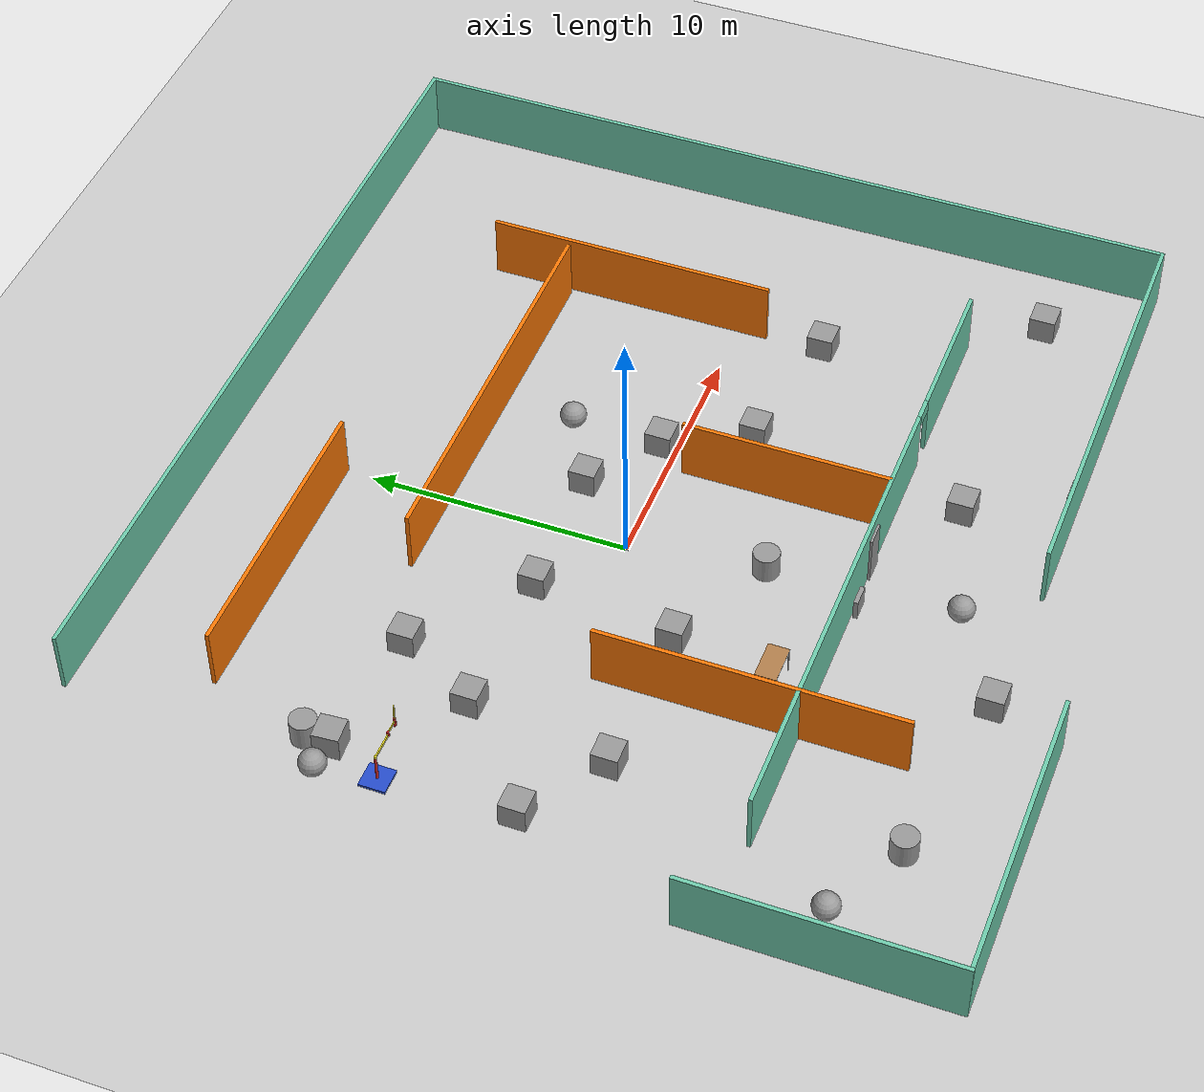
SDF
<sdf version="1.7">
 <world name="default">
  <light name="sun" type="directional">
   <pose>0 0 10 0 -0 0</pose>
   <diffuse>0.8 0.8 0.8 1</diffuse>
   <specular>0.2 0.2 0.2 1</specular>
   <attenuation>
    <range>1000</range>
    <constant>0.9</constant>
    <linear>0.01</linear>
    <quadratic>0.001</quadratic>
   </attenuation>
   <direction>-0.5 0.1 -0.9</direction>
   <spot><inner_angle>0</inner_angle><outer_angle>0</outer_angle><falloff>0</falloff></spot>
  </light>
  <model name="ground_plane">
   <static>1</static>
   <link name="link">
    <collision name="collision">
     <geometry><plane><normal>0 0 1</normal><size>100 100</size></plane></geometry>
     <surface><friction><ode><mu>100</mu><mu2>50</mu2></ode></friction></surface>
    </collision>
    <visual name="visual">
     <cast_shadows>0</cast_shadows>
     <geometry><plane><normal>0 0 1</normal><size>100 100</size></plane></geometry>
     <material>
      <script><uri>file://media/materials/scripts/gazebo.material</uri><name>Gazebo/Grey</name></script>
     </material>
    </visual>
   </link>
  </model>
  <gravity>0 0 -9.8</gravity>
  <magnetic_field>6e-06 2.3e-05 -4.2e-05</magnetic_field>
  <atmosphere type="adiabatic"/>
  <physics type="ode">
   <max_step_size>0.001</max_step_size>
   <real_time_factor>1</real_time_factor>
   <real_time_update_rate>1000</real_time_update_rate>
  </physics>
  <scene><ambient>0.4 0.4 0.4 1</ambient><background>0.7 0.7 0.7 1</background><shadows>1</shadows></scene>
  <audio><device>default</device></audio>
  <spherical_coordinates>
   <surface_model>EARTH_WGS84</surface_model>
   <latitude_deg>32.2155</latitude_deg>
   <longitude_deg>119.501</longitude_deg>
   <elevation>488</elevation>
   <heading_deg>180</heading_deg>
  </spherical_coordinates>
  <model name="Untitled222">
   <pose>2.41059 -0.5834 0 0 -0 0</pose>
   <link name="Door_1">
    <collision name="Door_1_Collision">
     <geometry><box><size>0.9 0.17 2</size></box></geometry>
     <pose>0 0 1 0 -0 0</pose>
    </collision>
    <visual name="Door_1_Visual">
     <pose>0 0 1 0 -0 0</pose>
     <geometry><box><size>0.9 0.17 2</size></box></geometry>
     <material>
      <script><uri>file://media/materials/scripts/gazebo.material</uri><name>Gazebo/Grey</name></script>
     </material>
    </visual>
    <pose>4.24902 -14.0344 0 0 -0 0</pose>
   </link>
   <link name="Door_3">
    <collision name="Door_3_Collision">
     <geometry><box><size>0.9 0.17 2</size></box></geometry>
     <pose>0 0 1 0 -0 0</pose>
    </collision>
    <visual name="Door_3_Visual">
     <pose>0 0 1 0 -0 0</pose>
     <geometry><box><size>0.9 0.17 2</size></box></geometry>
     <material>
      <script><uri>file://media/materials/scripts/gazebo.material</uri><name>Gazebo/Grey</name></script>
     </material>
    </visual>
    <pose>-0.30773 -8.01293 0 0 -0 0</pose>
   </link>
   <link name="Wall_21">
    <collision name="Wall_21_Collision">
     <geometry><box><size>32.5 0.15 2.5</size></box></geometry>
     <pose>0 0 1.25 0 -0 0</pose>
    </collision>
    <visual name="Wall_21_Visual">
     <pose>0 0 1.25 0 -0 0</pose>
     <geometry><box><size>32.5 0.15 2.5</size></box></geometry>
     <material>
      <script><uri>file://media/materials/scripts/gazebo.material</uri><name>Gazebo/Grey</name></script>
      <ambient>0.435294 0.796078 0.67451 1</ambient>
     </material>
     <meta><layer>0</layer></meta>
    </visual>
    <pose>0.976447 16.4796 0 0 -0 0</pose>
   </link>
   <link name="Wall_22">
    <collision name="Wall_22_Collision">
     <geometry><box><size>30.75 0.15 2.5</size></box></geometry>
     <pose>0 0 1.25 0 -0 0</pose>
    </collision>
    <visual name="Wall_22_Visual">
     <pose>0 0 1.25 0 -0 0</pose>
     <geometry><box><size>30.75 0.15 2.5</size></box></geometry>
     <material>
      <script><uri>file://media/materials/scripts/gazebo.material</uri><name>Gazebo/Grey</name></script>
      <ambient>0.435294 0.796078 0.67451 1</ambient>
     </material>
     <meta><layer>0</layer></meta>
    </visual>
    <pose>17.1514 1.17963 0 0 -0 -1.5708</pose>
   </link>
   <link name="Wall_23">
    <collision name="Wall_23_Collision">
     <geometry><box><size>16.75 0.15 2.5</size></box></geometry>
     <pose>0 0 1.25 0 -0 0</pose>
    </collision>
    <visual name="Wall_23_Visual">
     <pose>0 0 1.25 0 -0 0</pose>
     <geometry><box><size>16.75 0.15 2.5</size></box></geometry>
     <material>
      <script><uri>file://media/materials/scripts/gazebo.material</uri><name>Gazebo/Grey</name></script>
      <ambient>0.435294 0.796078 0.67451 1</ambient>
     </material>
     <meta><layer>0</layer></meta>
    </visual>
    <pose>8.85145 -14.1204 0 0 -0 3.14159</pose>
   </link>
   <link name="Wall_25">
    <pose>-0.652029 -7.93156 0 0 -0 0</pose>
    <visual name="Wall_25_Visual_0">
     <pose>-3.37645 0 1.25 0 -0 0</pose>
     <geometry><box><size>18.7471 0.15 2.5</size></box></geometry>
     <material>
      <script><uri>file://media/materials/scripts/gazebo.material</uri><name>Gazebo/Grey</name></script>
      <ambient>0.435294 0.796078 0.67451 1</ambient>
     </material>
     <meta><layer>0</layer></meta>
    </visual>
    <collision name="Wall_25_Collision_0">
     <geometry><box><size>18.7471 0.15 2.5</size></box></geometry>
     <pose>-3.37645 0 1.25 0 -0 0</pose>
    </collision>
    <visual name="Wall_25_Visual_1">
     <pose>9.82355 0 1.25 0 -0 0</pose>
     <geometry><box><size>5.8529 0.15 2.5</size></box></geometry>
     <material>
      <script><uri>file://media/materials/scripts/gazebo.material</uri><name>Gazebo/Grey</name></script>
      <ambient>0.435294 0.796078 0.67451 1</ambient>
     </material>
     <meta><layer>0</layer></meta>
    </visual>
    <collision name="Wall_25_Collision_1">
     <geometry><box><size>5.8529 0.15 2.5</size></box></geometry>
     <pose>9.82355 0 1.25 0 -0 0</pose>
    </collision>
    <visual name="Wall_25_Visual_2">
     <pose>6.4471 0 2.25 0 -0 0</pose>
     <geometry><box><size>0.9 0.15 0.5</size></box></geometry>
     <material>
      <script><uri>file://media/materials/scripts/gazebo.material</uri><name>Gazebo/Grey</name></script>
      <ambient>0.435294 0.796078 0.67451 1</ambient>
     </material>
     <meta><layer>0</layer></meta>
    </visual>
    <collision name="Wall_25_Collision_2">
     <geometry><box><size>0.9 0.15 0.5</size></box></geometry>
     <pose>6.4471 0 2.25 0 -0 0</pose>
    </collision>
   </link>
   <link name="Wall_27">
    <collision name="Wall_27_Collision">
     <geometry><box><size>8 0.15 2.5</size></box></geometry>
     <pose>0 0 1.25 0 -0 0</pose>
    </collision>
    <visual name="Wall_27_Visual">
     <pose>0 0 1.25 0 -0 0</pose>
     <geometry><box><size>8 0.15 2.5</size></box></geometry>
     <material>
      <script><uri>file://media/materials/scripts/gazebo.material</uri><name>Gazebo/Grey</name></script>
      <ambient>0.996078 0.47451 0.0196078 1</ambient>
     </material>
     <meta><layer>0</layer></meta>
    </visual>
    <pose>1.97065 -3.96361 0 0 -0 -1.5708</pose>
   </link>
   <link name="Wall_29">
    <collision name="Wall_29_Collision">
     <geometry><box><size>11.5 0.15 2.5</size></box></geometry>
     <pose>0 0 1.25 0 -0 0</pose>
    </collision>
    <visual name="Wall_29_Visual">
     <pose>0 0 1.25 0 -0 0</pose>
     <geometry><box><size>11.5 0.15 2.5</size></box></geometry>
     <material>
      <script><uri>file://media/materials/scripts/gazebo.material</uri><name>Gazebo/Grey</name></script>
      <ambient>0.996078 0.47451 0.0196078 1</ambient>
     </material>
     <meta><layer>0</layer></meta>
    </visual>
    <pose>-8.44479 -6.20183 0 0 -0 -1.5708</pose>
   </link>
   <link name="Wall_31">
    <collision name="Wall_31_Collision">
     <geometry><box><size>10 0.15 2.5</size></box></geometry>
     <pose>0 0 1.25 0 -0 0</pose>
    </collision>
    <visual name="Wall_31_Visual">
     <pose>0 0 1.25 0 -0 0</pose>
     <geometry><box><size>10 0.15 2.5</size></box></geometry>
     <material>
      <script><uri>file://media/materials/scripts/gazebo.material</uri><name>Gazebo/Grey</name></script>
      <ambient>0.435294 0.796078 0.67451 1</ambient>
     </material>
     <meta><layer>0</layer></meta>
    </visual>
    <pose>-17.1514 -11.5546 0 0 -0 -1.5708</pose>
   </link>
   <link name="Wall_32">
    <collision name="Wall_32_Collision">
     <geometry><box><size>11.5 0.15 2.5</size></box></geometry>
     <pose>0 0 1.25 0 -0 0</pose>
    </collision>
    <visual name="Wall_32_Visual">
     <pose>0 0 1.25 0 -0 0</pose>
     <geometry><box><size>11.5 0.15 2.5</size></box></geometry>
     <material>
      <script><uri>file://media/materials/scripts/gazebo.material</uri><name>Gazebo/Grey</name></script>
      <ambient>0.435294 0.796078 0.67451 1</ambient>
     </material>
     <meta><layer>0</layer></meta>
    </visual>
    <pose>-11.4764 -16.4796 0 0 -0 0</pose>
   </link>
   <link name="Wall_34">
    <collision name="Wall_34_Collision">
     <geometry><box><size>11 0.15 2.5</size></box></geometry>
     <pose>0 0 1.25 0 -0 0</pose>
    </collision>
    <visual name="Wall_34_Visual">
     <pose>0 0 1.25 0 -0 0</pose>
     <geometry><box><size>11 0.15 2.5</size></box></geometry>
     <material>
      <script><uri>file://media/materials/scripts/gazebo.material</uri><name>Gazebo/Grey</name></script>
      <ambient>0.996078 0.47451 0.0196078 1</ambient>
     </material>
     <meta><layer>0</layer></meta>
    </visual>
    <pose>-7.82066 11.6788 0 0 -0 0</pose>
   </link>
   <link name="Wall_36">
    <collision name="Wall_36_Collision">
     <geometry><box><size>15.5 0.15 2.5</size></box></geometry>
     <pose>0 0 1.25 0 -0 0</pose>
    </collision>
    <visual name="Wall_36_Visual">
     <pose>0 0 1.25 0 -0 0</pose>
     <geometry><box><size>15.5 0.15 2.5</size></box></geometry>
     <material>
      <script><uri>file://media/materials/scripts/gazebo.material</uri><name>Gazebo/Grey</name></script>
      <ambient>0.996078 0.47451 0.0196078 1</ambient>
     </material>
     <meta><layer>0</layer></meta>
    </visual>
    <pose>1.83407 7.52886 0 0 -0 0</pose>
   </link>
   <link name="Wall_38">
    <collision name="Wall_38_Collision">
     <geometry><box><size>11.25 0.15 2.5</size></box></geometry>
     <pose>0 0 1.25 0 -0 0</pose>
    </collision>
    <visual name="Wall_38_Visual">
     <pose>0 0 1.25 0 -0 0</pose>
     <geometry><box><size>11.25 0.15 2.5</size></box></geometry>
     <material>
      <script><uri>file://media/materials/scripts/gazebo.material</uri><name>Gazebo/Grey</name></script>
      <ambient>0.996078 0.47451 0.0196078 1</ambient>
     </material>
     <meta><layer>0</layer></meta>
    </visual>
    <pose>9.8636 5.07094 0 0 -0 -1.5708</pose>
   </link>
   <link name="Window_2">
    <collision name="Window_2_Collision">
     <geometry><box><size>0.8 0.17 0.8</size></box></geometry>
     <pose>0 0 0.4 0 -0 0</pose>
    </collision>
    <visual name="Window_2_Visual">
     <pose>0 0 0.4 0 -0 0</pose>
     <geometry><box><size>0.8 0.17 0.8</size></box></geometry>
     <material>
      <script><uri>file://media/materials/scripts/gazebo.material</uri><name>Gazebo/Grey</name></script>
     </material>
    </visual>
    <pose>-2.66748 -8.25704 0.5 0 -0 0</pose>
   </link>
   <static>1</static>
  </model>
  <model name="unit_cylinder">
   <pose>-11.9768 7.13366 0.499992 -3e-06 2e-06 0.013015</pose>
   <link name="link">
    <inertial>
     <mass>1</mass>
     <inertia><ixx>0.145833</ixx><ixy>0</ixy><ixz>0</ixz><iyy>0.145833</iyy><iyz>0</iyz><izz>0.125</izz></inertia>
    </inertial>
    <collision name="collision">
     <geometry><cylinder><radius>0.5</radius><length>1</length></cylinder></geometry>
    </collision>
    <visual name="visual">
     <geometry><cylinder><radius>0.5</radius><length>1</length></cylinder></geometry>
     <material>
      <script><name>Gazebo/Grey</name><uri>file://media/materials/scripts/gazebo.material</uri></script>
     </material>
    </visual>
   </link>
  </model>
  <model name="unit_sphere">
   <pose>-13.2033 6.23711 0.5 0 -0 0</pose>
   <link name="link">
    <inertial>
     <mass>1</mass>
     <inertia><ixx>0.1</ixx><ixy>0</ixy><ixz>0</ixz><iyy>0.1</iyy><iyz>0</iyz><izz>0.1</izz></inertia>
    </inertial>
    <collision name="collision"><geometry><sphere><radius>0.5</radius></sphere></geometry></collision>
    <visual name="visual">
     <geometry><sphere><radius>0.5</radius></sphere></geometry>
     <material>
      <script><name>Gazebo/Grey</name><uri>file://media/materials/scripts/gazebo.material</uri></script>
     </material>
    </visual>
   </link>
  </model>
  <model name="unit_box">
   <pose>-11.9904 6.12986 0.499999 3e-06 -0 0.073833</pose>
   <link name="link">
    <inertial>
     <mass>1</mass>
     <inertia>
      <ixx>0.166667</ixx>
      <ixy>0</ixy>
      <ixz>0</ixz>
      <iyy>0.166667</iyy>
      <iyz>0</iyz>
      <izz>0.166667</izz>
     </inertia>
    </inertial>
    <collision name="collision"><geometry><box><size>1 1 1</size></box></geometry></collision>
    <visual name="visual">
     <geometry><box><size>1 1 1</size></box></geometry>
     <material>
      <script><name>Gazebo/Grey</name><uri>file://media/materials/scripts/gazebo.material</uri></script>
     </material>
    </visual>
   </link>
  </model>
  <model name="simple_arm">
   <link name="arm_base">
    <inertial>
     <pose>0 0 0.00099 0 -0 0</pose>
     <inertia><ixx>1.11</ixx><ixy>0</ixy><ixz>0</ixz><iyy>100.11</iyy><iyz>0</iyz><izz>1.01</izz></inertia>
     <mass>101</mass>
    </inertial>
    <collision name="arm_base_geom">
     <pose>0 0 0.05 0 -0 0</pose>
     <geometry><box><size>1 1 0.1</size></box></geometry>
    </collision>
    <visual name="arm_base_geom_visual">
     <pose>0 0 0.05 0 -0 0</pose>
     <geometry><box><size>1 1 0.1</size></box></geometry>
     <material>
      <script><uri>file://media/materials/scripts/gazebo.material</uri><name>Gazebo/Blue</name></script>
     </material>
    </visual>
    <collision name="arm_base_geom_arm_trunk">
     <pose>0 0 0.6 0 -0 0</pose>
     <geometry><cylinder><radius>0.05</radius><length>1</length></cylinder></geometry>
    </collision>
    <visual name="arm_base_geom_arm_trunk_visual">
     <pose>0 0 0.6 0 -0 0</pose>
     <geometry><cylinder><radius>0.05</radius><length>1</length></cylinder></geometry>
     <material>
      <script><uri>file://media/materials/scripts/gazebo.material</uri><name>Gazebo/Red</name></script>
     </material>
    </visual>
   </link>
   <link name="arm_shoulder_pan">
    <pose>0 0 1.1 0 -0 0</pose>
    <inertial>
     <pose>0.045455 0 0 0 -0 0</pose>
     <inertia><ixx>0.011</ixx><ixy>0</ixy><ixz>0</ixz><iyy>0.0225</iyy><iyz>0</iyz><izz>0.0135</izz></inertia>
     <mass>1.1</mass>
    </inertial>
    <collision name="arm_shoulder_pan_geom">
     <pose>0 0 0.05 0 -0 0</pose>
     <geometry><cylinder><radius>0.05</radius><length>0.1</length></cylinder></geometry>
    </collision>
    <visual name="arm_shoulder_pan_geom_visual">
     <pose>0 0 0.05 0 -0 0</pose>
     <geometry><cylinder><radius>0.05</radius><length>0.1</length></cylinder></geometry>
     <material>
      <script><uri>file://media/materials/scripts/gazebo.material</uri><name>Gazebo/Yellow</name></script>
     </material>
    </visual>
    <collision name="arm_shoulder_pan_geom_arm_shoulder">
     <pose>0.55 0 0.05 0 -0 0</pose>
     <geometry><box><size>1 0.05 0.1</size></box></geometry>
    </collision>
    <visual name="arm_shoulder_pan_geom_arm_shoulder_visual">
     <pose>0.55 0 0.05 0 -0 0</pose>
     <geometry><box><size>1 0.05 0.1</size></box></geometry>
     <material>
      <script><uri>file://media/materials/scripts/gazebo.material</uri><name>Gazebo/Yellow</name></script>
     </material>
    </visual>
   </link>
   <link name="arm_elbow_pan">
    <pose>1.05 0 1.1 0 -0 0</pose>
    <inertial>
     <pose>0.0875 0 0.083333 0 -0 0</pose>
     <inertia>
      <ixx>0.031</ixx>
      <ixy>0</ixy>
      <ixz>0.005</ixz>
      <iyy>0.07275</iyy>
      <iyz>0</iyz>
      <izz>0.04475</izz>
     </inertia>
     <mass>1.2</mass>
    </inertial>
    <collision name="arm_elbow_pan_geom">
     <pose>0 0 0.1 0 -0 0</pose>
     <geometry><cylinder><radius>0.05</radius><length>0.2</length></cylinder></geometry>
    </collision>
    <visual name="arm_elbow_pan_geom_visual">
     <pose>0 0 0.1 0 -0 0</pose>
     <geometry><cylinder><radius>0.05</radius><length>0.2</length></cylinder></geometry>
     <material>
      <script><uri>file://media/materials/scripts/gazebo.material</uri><name>Gazebo/Red</name></script>
     </material>
    </visual>
    <collision name="arm_elbow_pan_geom_arm_elbow">
     <pose>0.3 0 0.15 0 -0 0</pose>
     <geometry><box><size>0.5 0.03 0.1</size></box></geometry>
    </collision>
    <visual name="arm_elbow_pan_geom_arm_elbow_visual">
     <pose>0.3 0 0.15 0 -0 0</pose>
     <geometry><box><size>0.5 0.03 0.1</size></box></geometry>
     <material>
      <script><uri>file://media/materials/scripts/gazebo.material</uri><name>Gazebo/Yellow</name></script>
     </material>
    </visual>
    <collision name="arm_elbow_pan_geom_arm_wrist">
     <pose>0.55 0 0.15 0 -0 0</pose>
     <geometry><cylinder><radius>0.05</radius><length>0.3</length></cylinder></geometry>
    </collision>
    <visual name="arm_elbow_pan_geom_arm_wrist_visual">
     <pose>0.55 0 0.15 0 -0 0</pose>
     <geometry><cylinder><radius>0.05</radius><length>0.3</length></cylinder></geometry>
     <material>
      <script><uri>file://media/materials/scripts/gazebo.material</uri><name>Gazebo/Red</name></script>
     </material>
    </visual>
   </link>
   <link name="arm_wrist_lift">
    <pose>1.6 0 1.05 0 -0 0</pose>
    <inertial>
     <inertia><ixx>0.01</ixx><ixy>0</ixy><ixz>0</ixz><iyy>0.01</iyy><iyz>0</iyz><izz>0.001</izz></inertia>
     <mass>0.1</mass>
    </inertial>
    <collision name="arm_wrist_lift_geom">
     <pose>0 0 0.5 0 -0 0</pose>
     <geometry><cylinder><radius>0.03</radius><length>1</length></cylinder></geometry>
    </collision>
    <visual name="arm_wrist_lift_geom_visual">
     <pose>0 0 0.5 0 -0 0</pose>
     <geometry><cylinder><radius>0.03</radius><length>1</length></cylinder></geometry>
     <material>
      <script><uri>file://media/materials/scripts/gazebo.material</uri><name>Gazebo/Yellow</name></script>
     </material>
    </visual>
   </link>
   <link name="arm_wrist_roll">
    <pose>1.6 0 1 0 -0 0</pose>
    <inertial>
     <inertia><ixx>0.01</ixx><ixy>0</ixy><ixz>0</ixz><iyy>0.01</iyy><iyz>0</iyz><izz>0.001</izz></inertia>
     <mass>0.1</mass>
    </inertial>
    <collision name="arm_wrist_roll_geom">
     <pose>0 0 0.025 0 -0 0</pose>
     <geometry><cylinder><radius>0.05</radius><length>0.05</length></cylinder></geometry>
    </collision>
    <visual name="arm_wrist_roll_geom_visual">
     <pose>0 0 0.025 0 -0 0</pose>
     <geometry><cylinder><radius>0.05</radius><length>0.05</length></cylinder></geometry>
     <material>
      <script><uri>file://media/materials/scripts/gazebo.material</uri><name>Gazebo/Red</name></script>
     </material>
    </visual>
   </link>
   <joint name="arm_shoulder_pan_joint" type="revolute">
    <parent>arm_base</parent>
    <child>arm_shoulder_pan</child>
    <axis>
     <dynamics>
      <damping>1</damping>
      <friction>0</friction>
      <spring_reference>0</spring_reference>
      <spring_stiffness>0</spring_stiffness>
     </dynamics>
     <xyz expressed_in="__model__">0 0 1</xyz>
     <limit><lower>-1e+16</lower><upper>1e+16</upper></limit>
    </axis>
   </joint>
   <joint name="arm_elbow_pan_joint" type="revolute">
    <parent>arm_shoulder_pan</parent>
    <child>arm_elbow_pan</child>
    <axis>
     <dynamics>
      <damping>1</damping>
      <friction>0</friction>
      <spring_reference>0</spring_reference>
      <spring_stiffness>0</spring_stiffness>
     </dynamics>
     <xyz expressed_in="__model__">0 0 1</xyz>
     <limit><lower>-1e+16</lower><upper>1e+16</upper></limit>
    </axis>
   </joint>
   <joint name="arm_wrist_lift_joint" type="prismatic">
    <parent>arm_elbow_pan</parent>
    <child>arm_wrist_lift</child>
    <axis>
     <dynamics>
      <damping>1</damping>
      <friction>0</friction>
      <spring_reference>0</spring_reference>
      <spring_stiffness>0</spring_stiffness>
     </dynamics>
     <limit><lower>-0.8</lower><upper>0.1</upper></limit>
     <xyz expressed_in="__model__">0 0 1</xyz>
    </axis>
   </joint>
   <joint name="arm_wrist_roll_joint" type="revolute">
    <parent>arm_wrist_lift</parent>
    <child>arm_wrist_roll</child>
    <axis>
     <dynamics>
      <damping>1</damping>
      <friction>0</friction>
      <spring_reference>0</spring_reference>
      <spring_stiffness>0</spring_stiffness>
     </dynamics>
     <limit><lower>-2.99999</lower><upper>2.99999</upper></limit>
     <xyz expressed_in="__model__">0 0 1</xyz>
    </axis>
   </joint>
   <pose>-12.7416 4.07911 -0 0 0 -0.004441</pose>
  </model>
  <model name="table">
   <static>1</static>
   <link name="link">
    <collision name="surface">
     <pose>0 0 1 0 -0 0</pose>
     <geometry><box><size>1.5 0.8 0.03</size></box></geometry>
     <surface><friction><ode><mu>0.6</mu><mu2>0.6</mu2></ode></friction></surface>
    </collision>
    <visual name="visual1">
     <pose>0 0 1 0 -0 0</pose>
     <geometry><box><size>1.5 0.8 0.03</size></box></geometry>
     <material>
      <script><uri>file://media/materials/scripts/gazebo.material</uri><name>Gazebo/Wood</name></script>
     </material>
    </visual>
    <collision name="front_left_leg">
     <pose>0.68 0.38 0.5 0 -0 0</pose>
     <geometry><cylinder><radius>0.02</radius><length>1</length></cylinder></geometry>
    </collision>
    <visual name="front_left_leg1">
     <pose>0.68 0.38 0.5 0 -0 0</pose>
     <geometry><cylinder><radius>0.02</radius><length>1</length></cylinder></geometry>
     <material>
      <script><uri>file://media/materials/scripts/gazebo.material</uri><name>Gazebo/Grey</name></script>
     </material>
    </visual>
    <collision name="front_right_leg">
     <pose>0.68 -0.38 0.5 0 -0 0</pose>
     <geometry><cylinder><radius>0.02</radius><length>1</length></cylinder></geometry>
    </collision>
    <visual name="front_right_leg1">
     <pose>0.68 -0.38 0.5 0 -0 0</pose>
     <geometry><cylinder><radius>0.02</radius><length>1</length></cylinder></geometry>
     <material>
      <script><uri>file://media/materials/scripts/gazebo.material</uri><name>Gazebo/Grey</name></script>
     </material>
    </visual>
    <collision name="back_right_leg">
     <pose>-0.68 -0.38 0.5 0 -0 0</pose>
     <geometry><cylinder><radius>0.02</radius><length>1</length></cylinder></geometry>
    </collision>
    <visual name="back_right_leg1">
     <pose>-0.68 -0.38 0.5 0 -0 0</pose>
     <geometry><cylinder><radius>0.02</radius><length>1</length></cylinder></geometry>
     <material>
      <script><uri>file://media/materials/scripts/gazebo.material</uri><name>Gazebo/Grey</name></script>
     </material>
    </visual>
    <collision name="back_left_leg">
     <pose>-0.68 0.38 0.5 0 -0 0</pose>
     <geometry><cylinder><radius>0.02</radius><length>1</length></cylinder></geometry>
    </collision>
    <visual name="back_left_leg1">
     <pose>-0.68 0.38 0.5 0 -0 0</pose>
     <geometry><cylinder><radius>0.02</radius><length>1</length></cylinder></geometry>
     <material>
      <script><uri>file://media/materials/scripts/gazebo.material</uri><name>Gazebo/Grey</name></script>
     </material>
    </visual>
   </link>
   <pose>-4.00101 -6.91637 0 0 -0 0</pose>
  </model>
  <model name="fishbot">
   <link name="base_footprint">
    <inertial>
     <pose>0.002308 0 0.404577 0 -0 0</pose>
     <mass>0.52</mass>
     <inertia>
      <ixx>0.014299</ixx>
      <ixy>0</ixy>
      <ixz>0.000102692</ixz>
      <iyy>0.0163682</iyy>
      <iyz>0</iyz>
      <izz>0.0238692</izz>
     </inertia>
    </inertial>
    <collision name="base_footprint_fixed_joint_lump__base_link_collision">
     <pose>0 0 0.36 0 -0 0</pose>
     <geometry><cylinder><length>0.12</length><radius>0.1</radius></cylinder></geometry>
    </collision>
    <collision name="base_footprint_fixed_joint_lump__caster_link_collision_1">
     <pose>0.06 0 0.319 1.57079 -0 0</pose>
     <geometry><sphere><radius>0.032</radius></sphere></geometry>
     <surface>
      <contact><ode><kp>1e+06</kp><kd>10</kd></ode></contact>
      <friction><ode><mu>0</mu><mu2>0</mu2></ode></friction>
     </surface>
    </collision>
    <collision name="base_footprint_fixed_joint_lump__gps_link_collision_2">
     <pose>-0.1 0 0.46 0 -0 0</pose>
     <geometry><box><size>0.02 0.02 0.02</size></box></geometry>
    </collision>
    <collision name="base_footprint_fixed_joint_lump__imu_link_collision_3">
     <pose>0 0 0.38 0 -0 0</pose>
     <geometry><box><size>0.02 0.02 0.02</size></box></geometry>
    </collision>
    <collision name="base_footprint_fixed_joint_lump__velodyne_collision_4">
     <pose>0 0 0.38 0 -0 0</pose>
     <geometry><cylinder><length>0.02</length><radius>0.02</radius></cylinder></geometry>
    </collision>
    <collision name="base_footprint_fixed_joint_lump__navsat_link_collision_5">
     <pose>0.1 0 0.46 0 -0 0</pose>
     <geometry><box><size>0.02 0.02 0.02</size></box></geometry>
    </collision>
    <visual name="base_footprint_fixed_joint_lump__base_link_visual">
     <pose>0 0 0.36 0 -0 0</pose>
     <geometry><cylinder><length>0.04</length><radius>0.1</radius></cylinder></geometry>
    </visual>
    <visual name="base_footprint_fixed_joint_lump__caster_link_visual_1">
     <pose>0.06 0 0.319 1.57079 -0 0</pose>
     <geometry><sphere><radius>0.032</radius></sphere></geometry>
     <material>
      <script><name>Gazebo/Black</name><uri>file://media/materials/scripts/gazebo.material</uri></script>
     </material>
    </visual>
    <visual name="base_footprint_fixed_joint_lump__gps_link_visual_2">
     <pose>-0.1 0 0.46 0 -0 0</pose>
     <geometry><box><size>0.02 0.02 0.02</size></box></geometry>
    </visual>
    <visual name="base_footprint_fixed_joint_lump__imu_link_visual_3">
     <pose>0 0 0.38 0 -0 0</pose>
     <geometry><box><size>0.02 0.02 0.02</size></box></geometry>
    </visual>
    <visual name="base_footprint_fixed_joint_lump__velodyne_visual_4">
     <pose>0 0 0.38 0 -0 0</pose>
     <geometry><cylinder><length>0.02</length><radius>0.02</radius></cylinder></geometry>
    </visual>
    <visual name="base_footprint_fixed_joint_lump__navsat_link_visual_5">
     <pose>0.1 0 0.46 0 -0 0</pose>
     <geometry><box><size>0.02 0.02 0.02</size></box></geometry>
    </visual>
    <sensor name="my_gpss" type="gps">
     <always_on>1</always_on>
     <update_rate>10</update_rate>
     <plugin name="my_gps_plugins" filename="libgazebo_ros_gps_sensor.so">
      <ros><namespace>/gps2</namespace><remapping>~/out:=/gps/fix2</remapping></ros>
     </plugin>
     <pose>-0.1 0 0.46 0 -0 0</pose>
    </sensor>
    <sensor name="imu_sensor" type="imu">
     <plugin name="imu_plugin" filename="libgazebo_ros_imu_sensor.so">
      <ros><namespace>/</namespace><remapping>~/out:=/imu</remapping></ros>
      <initial_orientation_as_reference>0</initial_orientation_as_reference>
     </plugin>
     <always_on>1</always_on>
     <update_rate>500</update_rate>
     <visualize>1</visualize>
     <imu>
      <angular_velocity>
       <x>
        <noise type="gaussian">
         <mean>0</mean>
         <stddev>0.0002</stddev>
         <bias_mean>7.5e-06</bias_mean>
         <bias_stddev>8e-07</bias_stddev>
        </noise>
       </x>
       <y>
        <noise type="gaussian">
         <mean>0</mean>
         <stddev>0.0002</stddev>
         <bias_mean>7.5e-06</bias_mean>
         <bias_stddev>8e-07</bias_stddev>
        </noise>
       </y>
       <z>
        <noise type="gaussian">
         <mean>0</mean>
         <stddev>0.0002</stddev>
         <bias_mean>7.5e-06</bias_mean>
         <bias_stddev>8e-07</bias_stddev>
        </noise>
       </z>
      </angular_velocity>
      <linear_acceleration>
       <x>
        <noise type="gaussian">
         <mean>0</mean>
         <stddev>0.017</stddev>
         <bias_mean>0.1</bias_mean>
         <bias_stddev>0.001</bias_stddev>
        </noise>
       </x>
       <y>
        <noise type="gaussian">
         <mean>0</mean>
         <stddev>0.017</stddev>
         <bias_mean>0.1</bias_mean>
         <bias_stddev>0.001</bias_stddev>
        </noise>
       </y>
       <z>
        <noise type="gaussian">
         <mean>0</mean>
         <stddev>0.017</stddev>
         <bias_mean>0.1</bias_mean>
         <bias_stddev>0.001</bias_stddev>
        </noise>
       </z>
      </linear_acceleration>
     </imu>
     <pose>0 0 0.38 0 -0 0</pose>
    </sensor>
    <sensor name="laser_sensor" type="ray">
     <always_on>1</always_on>
     <visualize>0</visualize>
     <update_rate>10</update_rate>
     <ray>
      <scan>
       <horizontal>
        <samples>60</samples>
        <resolution>1</resolution>
        <min_angle>0</min_angle>
        <max_angle>6.28</max_angle>
       </horizontal>
       <vertical>
        <samples>16</samples>
        <resolution>1</resolution>
        <min_angle>0</min_angle>
        <max_angle>0.4</max_angle>
       </vertical>
      </scan>
      <range><min>0.12</min><max>40.5</max><resolution>0.015</resolution></range>
      <noise><type>gaussian</type><mean>0</mean><stddev>0.01</stddev></noise>
     </ray>
     <plugin name="my_ray_sensor_plugin" filename="libgazebo_ros_ray_sensor.so">
      <ros><namespace>/ray</namespace><remapping>~/out:=/points_raw</remapping></ros>
      <output_type>sensor_msgs/PointCloud2</output_type>
      <min_intensity>100.0</min_intensity>
      <frame_name>velodyne</frame_name>
     </plugin>
     <pose>0 0 0.38 0 -0 0</pose>
    </sensor>
    <sensor name="my_gps" type="gps">
     <always_on>1</always_on>
     <update_rate>10</update_rate>
     <plugin name="my_gps_plugin" filename="libgazebo_ros_gps_sensor.so">
      <ros><namespace>/gps1</namespace><remapping>~/out:=/gps/fix</remapping></ros>
     </plugin>
     <pose>0.1 0 0.46 0 -0 0</pose>
    </sensor>
   </link>
   <joint name="left_wheel_joint" type="revolute">
    <pose relative_to="base_footprint">-0.04 0.1 0.32 0 -0 0</pose>
    <parent>base_footprint</parent>
    <child>left_wheel_link</child>
    <axis>
     <xyz>0 1 0</xyz>
     <limit><lower>-1e+16</lower><upper>1e+16</upper></limit>
     <dynamics><spring_reference>0</spring_reference><spring_stiffness>0</spring_stiffness></dynamics>
    </axis>
   </joint>
   <link name="left_wheel_link">
    <pose relative_to="left_wheel_joint">0 0 0 0 -0 0</pose>
    <inertial>
     <mass>0.2</mass>
     <inertia>
      <ixx>0.000190417</ixx>
      <ixy>0</ixy>
      <ixz>0</ixz>
      <iyy>0.0001904</iyy>
      <iyz>0</iyz>
      <izz>0.00036</izz>
     </inertia>
    </inertial>
    <collision name="left_wheel_link_collision">
     <pose>0 0 0 1.57079 -0 0</pose>
     <geometry><cylinder><length>0.04</length><radius>0.032</radius></cylinder></geometry>
    </collision>
    <visual name="left_wheel_link_visual">
     <pose>0 0 0 1.57079 -0 0</pose>
     <geometry><cylinder><length>0.04</length><radius>0.032</radius></cylinder></geometry>
    </visual>
   </link>
   <joint name="right_wheel_joint" type="revolute">
    <pose relative_to="base_footprint">-0.04 -0.1 0.32 0 -0 0</pose>
    <parent>base_footprint</parent>
    <child>right_wheel_link</child>
    <axis>
     <xyz>0 1 0</xyz>
     <limit><lower>-1e+16</lower><upper>1e+16</upper></limit>
     <dynamics><spring_reference>0</spring_reference><spring_stiffness>0</spring_stiffness></dynamics>
    </axis>
   </joint>
   <link name="right_wheel_link">
    <pose relative_to="right_wheel_joint">0 0 0 0 -0 0</pose>
    <inertial>
     <mass>0.2</mass>
     <inertia>
      <ixx>0.000190417</ixx>
      <ixy>0</ixy>
      <ixz>0</ixz>
      <iyy>0.0001904</iyy>
      <iyz>0</iyz>
      <izz>0.00036</izz>
     </inertia>
    </inertial>
    <collision name="right_wheel_link_collision">
     <pose>0 0 0 1.57079 -0 0</pose>
     <geometry><cylinder><length>0.04</length><radius>0.032</radius></cylinder></geometry>
    </collision>
    <visual name="right_wheel_link_visual">
     <pose>0 0 0 1.57079 -0 0</pose>
     <geometry><cylinder><length>0.04</length><radius>0.032</radius></cylinder></geometry>
    </visual>
   </link>
   <static>0</static>
   <plugin name="diff_drive" filename="libgazebo_ros_diff_drive.so">
    <ros><namespace>/</namespace><remapping>cmd_vel:=cmd_vel</remapping><remapping>odom:=/odom</remapping></ros>
    <update_rate>500</update_rate>
    <left_joint>left_wheel_joint</left_joint>
    <right_joint>right_wheel_joint</right_joint>
    <wheel_separation>0.2</wheel_separation>
    <wheel_diameter>0.065</wheel_diameter>
    <max_wheel_torque>60</max_wheel_torque>
    <max_wheel_acceleration>3.0</max_wheel_acceleration>
    <publish_odom>1</publish_odom>
    <publish_odom_tf>0</publish_odom_tf>
    <publish_wheel_tf>0</publish_wheel_tf>
    <odometry_frame>odom</odometry_frame>
    <robot_base_frame>base_link</robot_base_frame>
   </plugin>
   <pose>0.01418 -0.000128 -0.287585 1e-06 -0.009978 -0.001574</pose>
  </model>
  <model name="unit_box_0">
   <pose>-2.83864 2.34832 0.499995 -1e-05 -0 -0</pose>
   <link name="link">
    <inertial>
     <mass>1</mass>
     <inertia>
      <ixx>0.166667</ixx>
      <ixy>0</ixy>
      <ixz>0</ixz>
      <iyy>0.166667</iyy>
      <iyz>0</iyz>
      <izz>0.166667</izz>
     </inertia>
    </inertial>
    <collision name="collision"><geometry><box><size>1 1 1</size></box></geometry></collision>
    <visual name="visual">
     <geometry><box><size>1 1 1</size></box></geometry>
     <material>
      <script><name>Gazebo/Grey</name><uri>file://media/materials/scripts/gazebo.material</uri></script>
     </material>
    </visual>
   </link>
  </model>
  <model name="unit_sphere_0">
   <pose>5.25747 4.11448 0.5 0 -0 0</pose>
   <link name="link">
    <inertial>
     <mass>1</mass>
     <inertia><ixx>0.1</ixx><ixy>0</ixy><ixz>0</ixz><iyy>0.1</iyy><iyz>0</iyz><izz>0.1</izz></inertia>
    </inertial>
    <collision name="collision"><geometry><sphere><radius>0.5</radius></sphere></geometry></collision>
    <visual name="visual">
     <geometry><sphere><radius>0.5</radius></sphere></geometry>
     <material>
      <script><name>Gazebo/Grey</name><uri>file://media/materials/scripts/gazebo.material</uri></script>
     </material>
    </visual>
   </link>
  </model>
  <model name="unit_cylinder_0">
   <pose>0.757591 -5.07448 0.499998 3e-06 -3e-06 0</pose>
   <link name="link">
    <inertial>
     <mass>1</mass>
     <inertia><ixx>0.145833</ixx><ixy>0</ixy><ixz>0</ixz><iyy>0.145833</iyy><iyz>0</iyz><izz>0.125</izz></inertia>
    </inertial>
    <collision name="collision">
     <geometry><cylinder><radius>0.5</radius><length>1</length></cylinder></geometry>
    </collision>
    <visual name="visual">
     <geometry><cylinder><radius>0.5</radius><length>1</length></cylinder></geometry>
     <material>
      <script><name>Gazebo/Grey</name><uri>file://media/materials/scripts/gazebo.material</uri></script>
     </material>
    </visual>
   </link>
  </model>
  <model name="unit_box_1">
   <pose>-9.47241 -3.00226 0.499995 0 1e-05 0</pose>
   <link name="link">
    <inertial>
     <mass>1</mass>
     <inertia>
      <ixx>0.166667</ixx>
      <ixy>0</ixy>
      <ixz>0</ixz>
      <iyy>0.166667</iyy>
      <iyz>0</iyz>
      <izz>0.166667</izz>
     </inertia>
    </inertial>
    <collision name="collision"><geometry><box><size>1 1 1</size></box></geometry></collision>
    <visual name="visual">
     <geometry><box><size>1 1 1</size></box></geometry>
     <material>
      <script><name>Gazebo/Grey</name><uri>file://media/materials/scripts/gazebo.material</uri></script>
     </material>
    </visual>
   </link>
  </model>
  <model name="unit_box_2">
   <pose>-6.9299 5.58704 0.499995 -1e-05 -0 -0</pose>
   <link name="link">
    <inertial>
     <mass>1</mass>
     <inertia>
      <ixx>0.166667</ixx>
      <ixy>0</ixy>
      <ixz>0</ixz>
      <iyy>0.166667</iyy>
      <iyz>0</iyz>
      <izz>0.166667</izz>
     </inertia>
    </inertial>
    <collision name="collision"><geometry><box><size>1 1 1</size></box></geometry></collision>
    <visual name="visual">
     <geometry><box><size>1 1 1</size></box></geometry>
     <material>
      <script><name>Gazebo/Grey</name><uri>file://media/materials/scripts/gazebo.material</uri></script>
     </material>
    </visual>
   </link>
  </model>
  <model name="unit_box_3">
   <pose>-3.46823 -3.09981 0.499995 0 1e-05 0</pose>
   <link name="link">
    <inertial>
     <mass>1</mass>
     <inertia>
      <ixx>0.166667</ixx>
      <ixy>0</ixy>
      <ixz>0</ixz>
      <iyy>0.166667</iyy>
      <iyz>0</iyz>
      <izz>0.166667</izz>
     </inertia>
    </inertial>
    <collision name="collision"><geometry><box><size>1 1 1</size></box></geometry></collision>
    <visual name="visual">
     <geometry><box><size>1 1 1</size></box></geometry>
     <material>
      <script><name>Gazebo/Grey</name><uri>file://media/materials/scripts/gazebo.material</uri></script>
     </material>
    </visual>
   </link>
  </model>
  <model name="unit_box_4">
   <pose>6.99096 -2.51396 0.499995 -1e-05 -0 -0</pose>
   <link name="link">
    <inertial>
     <mass>1</mass>
     <inertia>
      <ixx>0.166667</ixx>
      <ixy>0</ixy>
      <ixz>0</ixz>
      <iyy>0.166667</iyy>
      <iyz>0</iyz>
      <izz>0.166667</izz>
     </inertia>
    </inertial>
    <collision name="collision"><geometry><box><size>1 1 1</size></box></geometry></collision>
    <visual name="visual">
     <geometry><box><size>1 1 1</size></box></geometry>
     <material>
      <script><name>Gazebo/Grey</name><uri>file://media/materials/scripts/gazebo.material</uri></script>
     </material>
    </visual>
   </link>
  </model>
  <model name="unit_box_5">
   <pose>16.3371 -11.0778 0.499995 0 1e-05 0</pose>
   <link name="link">
    <inertial>
     <mass>1</mass>
     <inertia>
      <ixx>0.166667</ixx>
      <ixy>0</ixy>
      <ixz>0</ixz>
      <iyy>0.166667</iyy>
      <iyz>0</iyz>
      <izz>0.166667</izz>
     </inertia>
    </inertial>
    <collision name="collision"><geometry><box><size>1 1 1</size></box></geometry></collision>
    <visual name="visual">
     <geometry><box><size>1 1 1</size></box></geometry>
     <material>
      <script><name>Gazebo/Grey</name><uri>file://media/materials/scripts/gazebo.material</uri></script>
     </material>
    </visual>
   </link>
  </model>
  <model name="unit_sphere_1">
   <pose>1.08979 -12.2329 0.5 0 -0 0</pose>
   <link name="link">
    <inertial>
     <mass>1</mass>
     <inertia><ixx>0.1</ixx><ixy>0</ixy><ixz>0</ixz><iyy>0.1</iyy><iyz>0</iyz><izz>0.1</izz></inertia>
    </inertial>
    <collision name="collision"><geometry><sphere><radius>0.5</radius></sphere></geometry></collision>
    <visual name="visual">
     <geometry><sphere><radius>0.5</radius></sphere></geometry>
     <material>
      <script><name>Gazebo/Grey</name><uri>file://media/materials/scripts/gazebo.material</uri></script>
     </material>
    </visual>
   </link>
  </model>
  <model name="unit_cylinder_1">
   <pose>-9.49296 -13.3923 0.499992 -3e-06 4e-06 0</pose>
   <link name="link">
    <inertial>
     <mass>1</mass>
     <inertia><ixx>0.145833</ixx><ixy>0</ixy><ixz>0</ixz><iyy>0.145833</iyy><iyz>0</iyz><izz>0.125</izz></inertia>
    </inertial>
    <collision name="collision">
     <geometry><cylinder><radius>0.5</radius><length>1</length></cylinder></geometry>
    </collision>
    <visual name="visual">
     <geometry><cylinder><radius>0.5</radius><length>1</length></cylinder></geometry>
     <material>
      <script><name>Gazebo/Grey</name><uri>file://media/materials/scripts/gazebo.material</uri></script>
     </material>
    </visual>
   </link>
  </model>
  <model name="unit_sphere_2">
   <pose>-12.6746 -11.7456 0.5 0 -0 0</pose>
   <link name="link">
    <inertial>
     <mass>1</mass>
     <inertia><ixx>0.1</ixx><ixy>0</ixy><ixz>0</ixz><iyy>0.1</iyy><iyz>0</iyz><izz>0.1</izz></inertia>
    </inertial>
    <collision name="collision"><geometry><sphere><radius>0.5</radius></sphere></geometry></collision>
    <visual name="visual">
     <geometry><sphere><radius>0.5</radius></sphere></geometry>
     <material>
      <script><name>Gazebo/Grey</name><uri>file://media/materials/scripts/gazebo.material</uri></script>
     </material>
    </visual>
   </link>
  </model>
  <model name="unit_box_6">
   <pose>-8.68111 2.437 0.499995 0 1e-05 0</pose>
   <link name="link">
    <inertial>
     <mass>1</mass>
     <inertia>
      <ixx>0.166667</ixx>
      <ixy>0</ixy>
      <ixz>0</ixz>
      <iyy>0.166667</iyy>
      <iyz>0</iyz>
      <izz>0.166667</izz>
     </inertia>
    </inertial>
    <collision name="collision"><geometry><box><size>1 1 1</size></box></geometry></collision>
    <visual name="visual">
     <geometry><box><size>1 1 1</size></box></geometry>
     <material>
      <script><name>Gazebo/Grey</name><uri>file://media/materials/scripts/gazebo.material</uri></script>
     </material>
    </visual>
   </link>
  </model>
  <model name="unit_box_7">
   <pose>5.28652 0.600064 0.499995 -1e-05 -0 -0</pose>
   <link name="link">
    <inertial>
     <mass>1</mass>
     <inertia>
      <ixx>0.166667</ixx>
      <ixy>0</ixy>
      <ixz>0</ixz>
      <iyy>0.166667</iyy>
      <iyz>0</iyz>
      <izz>0.166667</izz>
     </inertia>
    </inertial>
    <collision name="collision"><geometry><box><size>1 1 1</size></box></geometry></collision>
    <visual name="visual">
     <geometry><box><size>1 1 1</size></box></geometry>
     <material>
      <script><name>Gazebo/Grey</name><uri>file://media/materials/scripts/gazebo.material</uri></script>
     </material>
    </visual>
   </link>
  </model>
  <model name="unit_box_8">
   <pose>5.91953 -10.8547 0.499995 0 1e-05 0</pose>
   <link name="link">
    <inertial>
     <mass>1</mass>
     <inertia>
      <ixx>0.166667</ixx>
      <ixy>0</ixy>
      <ixz>0</ixz>
      <iyy>0.166667</iyy>
      <iyz>0</iyz>
      <izz>0.166667</izz>
     </inertia>
    </inertial>
    <collision name="collision"><geometry><box><size>1 1 1</size></box></geometry></collision>
    <visual name="visual">
     <geometry><box><size>1 1 1</size></box></geometry>
     <material>
      <script><name>Gazebo/Grey</name><uri>file://media/materials/scripts/gazebo.material</uri></script>
     </material>
    </visual>
   </link>
  </model>
  <model name="unit_box_9">
   <pose>12.3415 -3.38584 0.499995 -1e-05 -0 -0</pose>
   <link name="link">
    <inertial>
     <mass>1</mass>
     <inertia>
      <ixx>0.166667</ixx>
      <ixy>0</ixy>
      <ixz>0</ixz>
      <iyy>0.166667</iyy>
      <iyz>0</iyz>
      <izz>0.166667</izz>
     </inertia>
    </inertial>
    <collision name="collision"><geometry><box><size>1 1 1</size></box></geometry></collision>
    <visual name="visual">
     <geometry><box><size>1 1 1</size></box></geometry>
     <material>
      <script><name>Gazebo/Grey</name><uri>file://media/materials/scripts/gazebo.material</uri></script>
     </material>
    </visual>
   </link>
  </model>
  <model name="unit_box_10">
   <pose>2.50093 2.52425 0.499995 0 1e-05 0</pose>
   <link name="link">
    <inertial>
     <mass>1</mass>
     <inertia>
      <ixx>0.166667</ixx>
      <ixy>0</ixy>
      <ixz>0</ixz>
      <iyy>0.166667</iyy>
      <iyz>0</iyz>
      <izz>0.166667</izz>
     </inertia>
    </inertial>
    <collision name="collision"><geometry><box><size>1 1 1</size></box></geometry></collision>
    <visual name="visual">
     <geometry><box><size>1 1 1</size></box></geometry>
     <material>
      <script><name>Gazebo/Grey</name><uri>file://media/materials/scripts/gazebo.material</uri></script>
     </material>
    </visual>
   </link>
  </model>
  <model name="unit_box_11">
   <pose>-12.5364 -0.924262 0.499995 -1e-05 -0 0</pose>
   <link name="link">
    <inertial>
     <mass>1</mass>
     <inertia>
      <ixx>0.166667</ixx>
      <ixy>0</ixy>
      <ixz>0</ixz>
      <iyy>0.166667</iyy>
      <iyz>0</iyz>
      <izz>0.166667</izz>
     </inertia>
    </inertial>
    <collision name="collision"><geometry><box><size>1 1 1</size></box></geometry></collision>
    <visual name="visual">
     <geometry><box><size>1 1 1</size></box></geometry>
     <material>
      <script><name>Gazebo/Grey</name><uri>file://media/materials/scripts/gazebo.material</uri></script>
     </material>
    </visual>
   </link>
  </model>
  <model name="unit_box_12">
   <pose>-2.52038 -14.4073 0.5 0 -0 0</pose>
   <link name="link">
    <inertial>
     <mass>1</mass>
     <inertia>
      <ixx>0.166667</ixx>
      <ixy>0</ixy>
      <ixz>0</ixz>
      <iyy>0.166667</iyy>
      <iyz>0</iyz>
      <izz>0.166667</izz>
     </inertia>
    </inertial>
    <collision name="collision"><geometry><box><size>1 1 1</size></box></geometry></collision>
    <visual name="visual">
     <geometry><box><size>1 1 1</size></box></geometry>
     <material>
      <script><name>Gazebo/Grey</name><uri>file://media/materials/scripts/gazebo.material</uri></script>
     </material>
    </visual>
   </link>
  </model>
 </world>
</sdf>
